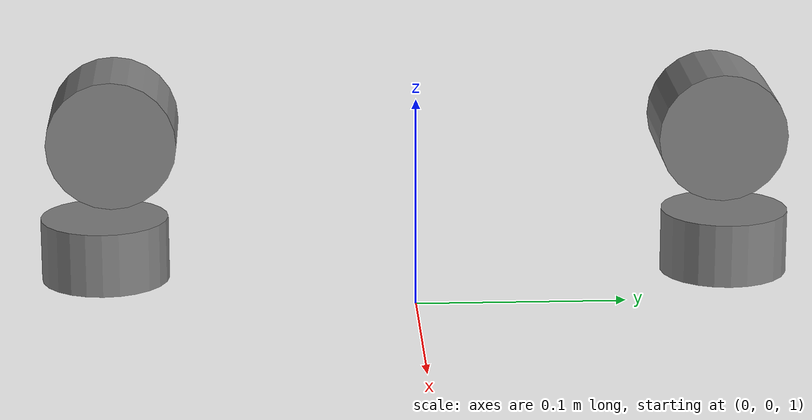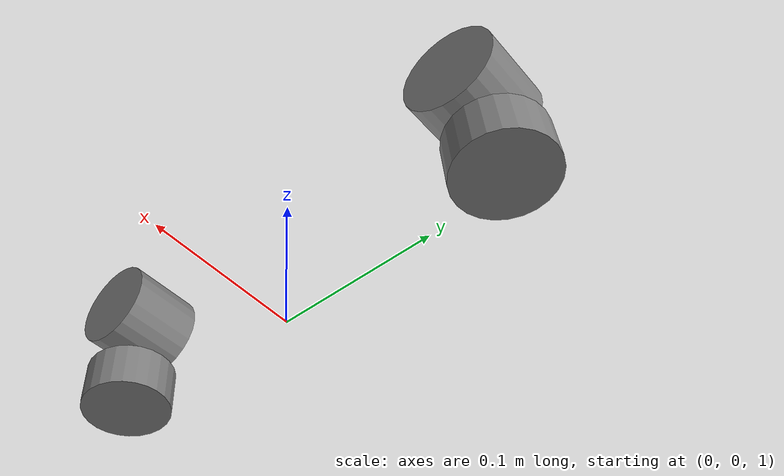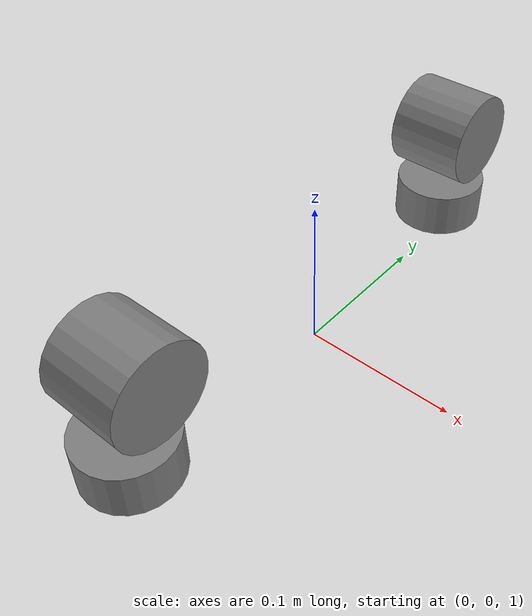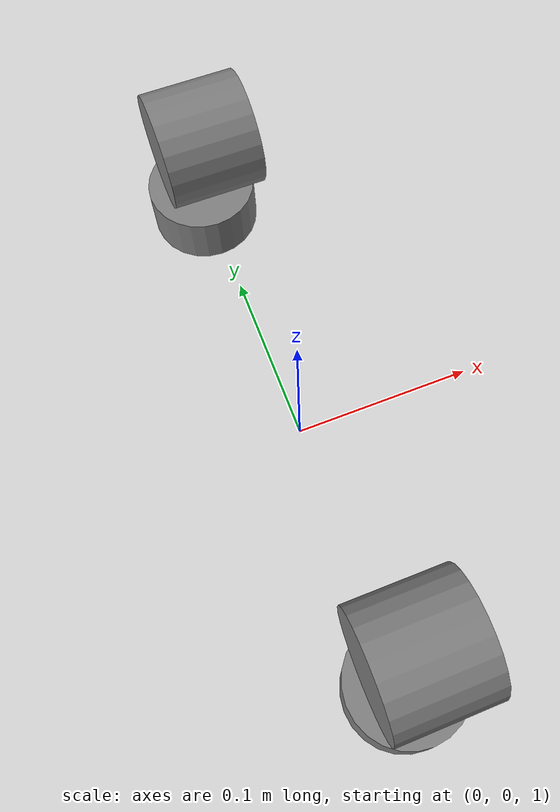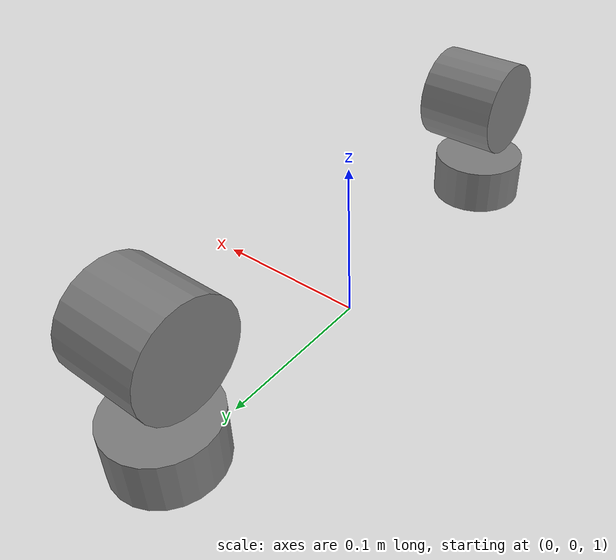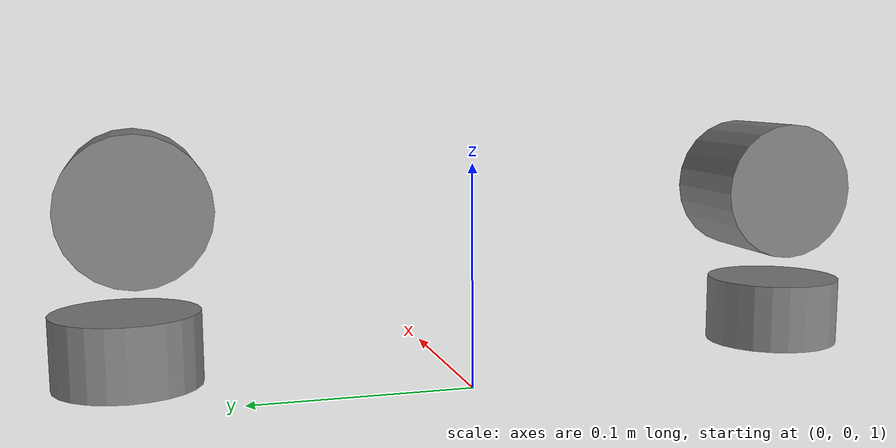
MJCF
<mujoco model="g1 scene">
  <compiler angle="radian" meshdir="." />

  <option iterations="3" ls_iterations="5" integrator="Euler" cone="pyramidal">
    <flag eulerdamp="disable" />
  </option>

  <size nkey="2" />

  <statistic meansize="0.04" extent="1.2" center="0 0 0.7" />

  <visual>
    <global azimuth="140" elevation="-20" />
    <quality shadowsize="8192" />
    <headlight ambient="0.2 0.2 0.2" diffuse="0.8 0.8 0.8" specular="1 1 1" />
    <map force="0.01" />
    <scale forcewidth="0.3" contactwidth="0.5" contactheight="0.2" />
    <rgba force="1 0 0 1" />
  </visual>

  <default>
    <default class="g1">
      <joint damping="2" frictionloss="0.1" />
      <geom contype="0" conaffinity="0" condim="1" />
      <site group="5" rgba="1 0 0 1" />
      <general biastype="affine" gainprm="75" biasprm="0 -75" />
      <default class="hip">
        <default class="hip_pitch">
          <joint range="-2.5307 2.8798" armature="0.0101775" axis="0 1 0" />
        </default>
        <default class="hip_roll">
          <joint range="-0.5236 2.9671" armature="0.0251019" axis="1 0 0" />
        </default>
        <default class="hip_yaw">
          <joint range="-2.7576 2.7576" armature="0.0101775" />
        </default>
      </default>
      <default class="knee">
        <joint range="-0.087267 2.8798" armature="0.0251019" axis="0 1 0" />
      </default>
      <default class="ankle">
        <default class="ankle_pitch">
          <joint range="-0.87267 0.5236" armature="0.00721945" damping="1" axis="0 1 0" />
          <general gainprm="20" biasprm="0 -20" />
        </default>
        <default class="ankle_roll">
          <joint range="-0.2618 0.2618" armature="0.00721945" damping="0.2" axis="1 0 0" />
          <general gainprm="2" biasprm="0 -2" />
        </default>
      </default>
      <default class="waist_yaw">
        <joint range="-2.618 2.618" armature="0.0101775" />
      </default>
      <default class="waist_pitch">
        <joint range="-0.52 0.52" armature="0.00721945" axis="0 1 0" />
      </default>
      <default class="waist_roll">
        <joint range="-0.52 0.52" armature="0.00721945" axis="1 0 0" />
      </default>
      <default class="shoulder">
        <default class="shoulder_pitch">
          <joint range="-3.0892 2.6704" armature="0.00360972" axis="0 1 0" />
        </default>
        <default class="shoulder_roll">
          <joint armature="0.00360972" axis="1 0 0" />
        </default>
        <default class="shoulder_yaw">
          <joint range="-2.618 2.618" armature="0.00360972" />
        </default>
      </default>
      <default class="elbow">
        <joint range="-1.0472 2.0944" armature="0.00360972" axis="0 1 0" />
      </default>
      <default class="wrist">
        <joint damping="0.2" />
        <general gainprm="2" biasprm="0 -2" />
        <default class="wrist_roll">
          <joint range="-1.97222 1.97222" armature="0.00360972" axis="1 0 0" />
        </default>
        <default class="wrist_pitch">
          <joint range="-1.61443 1.61443" armature="0.00425" axis="0 1 0" />
        </default>
        <default class="wrist_yaw">
          <joint range="-1.61443 1.61443" armature="0.00425" />
        </default>
      </default>
      <default class="visual">
        </default>
      <default class="collision">
        <geom group="3" rgba="0.2 0.6 0.2 0.3" />
        <default class="foot">
          <geom size="0.085 0.03 0.005" />
        </default>
      </default>
    </default>
  </default>

  <asset>
    <texture type="skybox" colorspace="auto" builtin="gradient" rgb1="1 1 1" rgb2="1 1 1" width="800" height="4800" />
    <texture type="2d" colorspace="auto" name="groundplane" builtin="checker" mark="edge" rgb1="1 1 1" rgb2="1 1 1" width="300" height="300" />
    <material name="silver" rgba="0.7 0.7 0.7 1" />
    <material name="black" rgba="0.2 0.2 0.2 1" />
    <material name="groundplane" texture="groundplane" texrepeat="5 5" texuniform="true" />
    </asset>

  <worldbody>
    <geom name="floor" size="0 0 0.01" type="plane" material="groundplane" contype="1" conaffinity="1" condim="3" friction="0.6 0.005 0.0001" />
    <light name="spotlight" target="pelvis" pos="0 -2 4" exponent="20" mode="targetbodycom" />
    <body name="pelvis" childclass="g1" pos="0 0 0.793">
      <inertial pos="0 0 -0.07605" quat="1 0 -0.000399148 0" mass="3.813" diaginertia="0.010549 0.0093089 0.0079184" />
      <joint name="floating_base_joint" type="free" damping="0" frictionloss="0" />
      <site name="imu_in_pelvis" size="0.01" pos="0.04525 0 -0.08339" />
      <camera name="track" quat="0.683353 0.555871 0.298684 0.367183" pos="1.734 -1.135 0.35" mode="trackcom" />
      <body name="left_hip_pitch_link" pos="0 0.064452 -0.1027">
        <inertial pos="0.002741 0.047791 -0.02606" quat="0.954862 0.293964 0.0302556 0.030122" mass="1.35" diaginertia="0.00181517 0.00153422 0.00116212" />
        <joint name="left_hip_pitch_joint" class="hip_pitch" />
        <body name="left_hip_roll_link" pos="0 0.052 -0.030465" quat="0.996179 0 -0.0873386 0">
          <inertial pos="0.029812 -0.001045 -0.087934" quat="0.977808 -1.97119e-05 0.205576 -0.0403793" mass="1.52" diaginertia="0.00254986 0.00241169 0.00148755" />
          <joint name="left_hip_roll_joint" class="hip_roll" />
          <geom name="left_thigh" class="collision" size="0.06 0.1" pos="0.02 0 -0.1" type="capsule" />
          <body name="left_hip_yaw_link" pos="0.025001 0 -0.12412">
            <inertial pos="-0.057709 -0.010981 -0.15078" quat="0.600598 0.15832 0.223482 0.751181" mass="1.702" diaginertia="0.00776166 0.00717575 0.00160139" />
            <joint name="left_hip_yaw_joint" class="hip_yaw" />
            <body name="left_knee_link" pos="-0.078273 0.0021489 -0.17734" quat="0.996179 0 0.0873386 0">
              <inertial pos="0.005457 0.003964 -0.12074" quat="0.923418 -0.0327699 0.0158246 0.382067" mass="1.932" diaginertia="0.0113804 0.0112778 0.00146458" />
              <joint name="left_knee_joint" class="knee" />
              <geom name="left_shin" class="collision" size="0.08 0.125" pos="0.02 0 -0.125" type="capsule" />
              <body name="left_ankle_pitch_link" pos="0 -9.4445e-05 -0.30001">
                <inertial pos="-0.007269 0 0.011137" quat="0.603053 0.369225 0.369225 0.603053" mass="0.074" diaginertia="1.89e-05 1.40805e-05 6.9195e-06" />
                <joint name="left_ankle_pitch_joint" class="ankle_pitch" />
                <body name="left_ankle_roll_link" pos="0 0 -0.017558">
                  <inertial pos="0.026505 0 -0.016425" quat="-0.000481092 0.728482 -0.000618967 0.685065" mass="0.608" diaginertia="0.00167218 0.0016161 0.000217621" />
                  <joint name="left_ankle_roll_joint" class="ankle_roll" />
                  <geom name="left_foot" class="foot" size="0.09 0.03 0.008" pos="0.04 0 -0.029" type="box" contype="1" conaffinity="1" condim="3" friction="0.6 0.005 0.0001" />
                  <site name="left_foot" />
                </body>
              </body>
            </body>
          </body>
        </body>
      </body>
      <body name="right_hip_pitch_link" pos="0 -0.064452 -0.1027">
        <inertial pos="0.002741 -0.047791 -0.02606" quat="0.954862 -0.293964 0.0302556 -0.030122" mass="1.35" diaginertia="0.00181517 0.00153422 0.00116212" />
        <joint name="right_hip_pitch_joint" class="hip_pitch" />
        <body name="right_hip_roll_link" pos="0 -0.052 -0.030465" quat="0.996179 0 -0.0873386 0">
          <inertial pos="0.029812 0.001045 -0.087934" quat="0.977808 1.97119e-05 0.205576 0.0403793" mass="1.52" diaginertia="0.00254986 0.00241169 0.00148755" />
          <joint name="right_hip_roll_joint" class="hip_roll" />
          <geom name="right_thigh" class="collision" size="0.06 0.1" pos="0.02 0 -0.1" type="capsule" />
          <body name="right_hip_yaw_link" pos="0.025001 0 -0.12412">
            <inertial pos="-0.057709 0.010981 -0.15078" quat="0.751181 0.223482 0.15832 0.600598" mass="1.702" diaginertia="0.00776166 0.00717575 0.00160139" />
            <joint name="right_hip_yaw_joint" class="hip_yaw" />
            <body name="right_knee_link" pos="-0.078273 -0.0021489 -0.17734" quat="0.996179 0 0.0873386 0">
              <inertial pos="0.005457 -0.003964 -0.12074" quat="0.923439 0.0345276 0.0116333 -0.382012" mass="1.932" diaginertia="0.011374 0.0112843 0.00146452" />
              <joint name="right_knee_joint" class="knee" />
              <geom name="right_shin" class="collision" size="0.08 0.125" pos="0.02 0 -0.125" type="capsule" />
              <body name="right_ankle_pitch_link" pos="0 9.4445e-05 -0.30001">
                <inertial pos="-0.007269 0 0.011137" quat="0.603053 0.369225 0.369225 0.603053" mass="0.074" diaginertia="1.89e-05 1.40805e-05 6.9195e-06" />
                <joint name="right_ankle_pitch_joint" class="ankle_pitch" />
                <body name="right_ankle_roll_link" pos="0 0 -0.017558">
                  <inertial pos="0.026505 0 -0.016425" quat="0.000481092 0.728482 0.000618967 0.685065" mass="0.608" diaginertia="0.00167218 0.0016161 0.000217621" />
                  <joint name="right_ankle_roll_joint" class="ankle_roll" />
                  <geom name="right_foot" class="foot" size="0.09 0.03 0.008" pos="0.04 0 -0.029" type="box" contype="1" conaffinity="1" condim="3" friction="0.6 0.005 0.0001" />
                  <site name="right_foot" />
                </body>
              </body>
            </body>
          </body>
        </body>
      </body>
      <body name="waist_yaw_link">
        <inertial pos="0.003494 0.000233 0.018034" quat="0.289697 0.591001 -0.337795 0.672821" mass="0.214" diaginertia="0.000163531 0.000107714 0.000102205" />
        <joint name="waist_yaw_joint" class="waist_yaw" />
        <body name="waist_roll_link" pos="-0.0039635 0 0.044">
          <inertial pos="0 2.3e-05 0" quat="0.5 0.5 -0.5 0.5" mass="0.086" diaginertia="8.245e-06 7.079e-06 6.339e-06" />
          <joint name="waist_roll_joint" class="waist_roll" />
          <body name="torso_link">
            <inertial pos="0.00203158 0.000339683 0.184568" quat="0.999803 -6.03319e-05 0.0198256 0.00131986" mass="7.818" diaginertia="0.121847 0.109825 0.0273735" />
            <joint name="waist_pitch_joint" class="waist_pitch" />
            <site name="imu_in_torso" size="0.01" pos="-0.03959 -0.00224 0.14792" />
            <body name="left_shoulder_pitch_link" pos="0.0039563 0.10022 0.24778" quat="0.990264 0.139201 1.38722e-05 -9.86868e-05">
              <inertial pos="0 0.035892 -0.011628" quat="0.654152 0.0130458 -0.326267 0.68225" mass="0.718" diaginertia="0.000465864 0.000432842 0.000406394" />
              <joint name="left_shoulder_pitch_joint" class="shoulder_pitch" />
              <geom class="visual" size="0.03 0.025" pos="0 0.04 -0.01" quat="0.707107 0 0.707107 0" type="cylinder" />
              <body name="left_shoulder_roll_link" pos="0 0.038 -0.013831" quat="0.990268 -0.139172 0 0">
                <inertial pos="-0.000227 0.00727 -0.063243" quat="0.701256 -0.0196223 -0.00710317 0.712604" mass="0.643" diaginertia="0.000691311 0.000618011 0.000388977" />
                <joint name="left_shoulder_roll_joint" class="shoulder_roll" range="-1.5882 2.2515" />
                <geom class="visual" size="0.03 0.015" pos="-0.004 0.006 -0.053" type="cylinder" />
                <body name="left_shoulder_yaw_link" pos="0 0.00624 -0.1032">
                  <inertial pos="0.010773 -0.002949 -0.072009" quat="0.716879 -0.0964829 -0.0679942 0.687134" mass="0.734" diaginertia="0.00106187 0.00103217 0.000400661" />
                  <joint name="left_shoulder_yaw_joint" class="shoulder_yaw" />
                  <body name="left_elbow_link" pos="0.015783 0 -0.080518">
                    <inertial pos="0.064956 0.004454 -0.010062" quat="0.541765 0.636132 0.388821 0.388129" mass="0.6" diaginertia="0.000443035 0.000421612 0.000259353" />
                    <joint name="left_elbow_joint" class="elbow" />
                    <body name="left_wrist_roll_link" pos="0.1 0.00188791 -0.01">
                      <inertial pos="0.0171394 0.000537591 4.8864e-07" quat="0.575338 0.411667 -0.574906 0.411094" mass="0.085445" diaginertia="5.48211e-05 4.96646e-05 3.57798e-05" />
                      <joint name="left_wrist_roll_joint" class="wrist_roll" />
                      <body name="left_wrist_pitch_link" pos="0.038 0 0">
                        <inertial pos="0.0229999 -0.00111685 -0.00111658" quat="0.249998 0.661363 0.293036 0.643608" mass="0.48405" diaginertia="0.000430353 0.000429873 0.000164648" />
                        <joint name="left_wrist_pitch_joint" class="wrist_pitch" />
                        <body name="left_wrist_yaw_link" pos="0.046 0 0">
                          <inertial pos="0.0708244 0.000191745 0.00161742" quat="0.510571 0.526295 0.468078 0.493188" mass="0.254576" diaginertia="0.000646113 0.000559993 0.000147566" />
                          <joint name="left_wrist_yaw_joint" class="wrist_yaw" />
                          <geom name="left_hand_collision" class="collision" size="0.05 0.025" pos="0.075 0 0" quat="0.707107 0 -0.707107 0" type="capsule" rgba="0.2 0.6 0.2 0.2" />
                          <site name="left_palm" size="0.01" pos="0.08 0 0" />
                        </body>
                      </body>
                    </body>
                  </body>
                </body>
              </body>
            </body>
            <body name="right_shoulder_pitch_link" pos="0.0039563 -0.10021 0.24778" quat="0.990264 -0.139201 1.38722e-05 9.86868e-05">
              <inertial pos="0 -0.035892 -0.011628" quat="0.68225 -0.326267 0.0130458 0.654152" mass="0.718" diaginertia="0.000465864 0.000432842 0.000406394" />
              <joint name="right_shoulder_pitch_joint" class="shoulder_pitch" />
              <geom class="visual" size="0.03 0.025" pos="0 -0.04 -0.01" quat="0.707107 0 0.707107 0" type="cylinder" />
              <body name="right_shoulder_roll_link" pos="0 -0.038 -0.013831" quat="0.990268 0.139172 0 0">
                <inertial pos="-0.000227 -0.00727 -0.063243" quat="0.712604 -0.00710317 -0.0196223 0.701256" mass="0.643" diaginertia="0.000691311 0.000618011 0.000388977" />
                <joint name="right_shoulder_roll_joint" class="shoulder_roll" range="-2.2515 1.5882" />
                <geom class="visual" size="0.03 0.015" pos="-0.004 -0.006 -0.053" type="cylinder" />
                <body name="right_shoulder_yaw_link" pos="0 -0.00624 -0.1032">
                  <inertial pos="0.010773 0.002949 -0.072009" quat="0.687134 -0.0679942 -0.0964829 0.716879" mass="0.734" diaginertia="0.00106187 0.00103217 0.000400661" />
                  <joint name="right_shoulder_yaw_joint" class="shoulder_yaw" />
                  <body name="right_elbow_link" pos="0.015783 0 -0.080518">
                    <inertial pos="0.064956 -0.004454 -0.010062" quat="0.388129 0.388821 0.636132 0.541765" mass="0.6" diaginertia="0.000443035 0.000421612 0.000259353" />
                    <joint name="right_elbow_joint" class="elbow" />
                    <body name="right_wrist_roll_link" pos="0.1 -0.00188791 -0.01">
                      <inertial pos="0.0171394 -0.000537591 4.8864e-07" quat="0.411667 0.575338 -0.411094 0.574906" mass="0.085445" diaginertia="5.48211e-05 4.96646e-05 3.57798e-05" />
                      <joint name="right_wrist_roll_joint" class="wrist_roll" />
                      <body name="right_wrist_pitch_link" pos="0.038 0 0">
                        <inertial pos="0.0229999 0.00111685 -0.00111658" quat="0.643608 0.293036 0.661363 0.249998" mass="0.48405" diaginertia="0.000430353 0.000429873 0.000164648" />
                        <joint name="right_wrist_pitch_joint" class="wrist_pitch" />
                        <body name="right_wrist_yaw_link" pos="0.046 0 0">
                          <inertial pos="0.0708244 -0.000191745 0.00161742" quat="0.493188 0.468078 0.526295 0.510571" mass="0.254576" diaginertia="0.000646113 0.000559993 0.000147566" />
                          <joint name="right_wrist_yaw_joint" class="wrist_yaw" />
                          <geom name="right_hand_collision" class="collision" size="0.05 0.025" pos="0.075 0 0" quat="0.707107 0 -0.707107 0" type="capsule" rgba="0.2 0.6 0.2 0.2" />
                          <site name="right_palm" size="0.01" pos="0.08 0 0" />
                        </body>
                      </body>
                    </body>
                  </body>
                </body>
              </body>
            </body>
          </body>
        </body>
      </body>
    </body>
  </worldbody>

  <actuator>
    <general name="left_hip_pitch_joint" class="hip_pitch" joint="left_hip_pitch_joint" ctrlrange="-2.5307 2.8798" forcerange="-88 88" forcelimited="true" />
    <general name="left_hip_roll_joint" class="hip_roll" joint="left_hip_roll_joint" ctrlrange="-0.5236 2.9671" forcerange="-139 139" forcelimited="true" />
    <general name="left_hip_yaw_joint" class="hip_yaw" joint="left_hip_yaw_joint" ctrlrange="-2.7576 2.7576" forcerange="-88 88" forcelimited="true" />
    <general name="left_knee_joint" class="knee" joint="left_knee_joint" ctrlrange="-0.087267 2.8798" forcerange="-139 139" forcelimited="true" />
    <general name="left_ankle_pitch_joint" class="ankle_pitch" joint="left_ankle_pitch_joint" ctrlrange="-0.87267 0.5236" forcerange="-50 50" forcelimited="true" />
    <general name="left_ankle_roll_joint" class="ankle_roll" joint="left_ankle_roll_joint" ctrlrange="-0.2618 0.2618" forcerange="-50 50" forcelimited="true" />
    <general name="right_hip_pitch_joint" class="hip_pitch" joint="right_hip_pitch_joint" ctrlrange="-2.5307 2.8798" forcerange="-88 88" forcelimited="true" />
    <general name="right_hip_roll_joint" class="hip_roll" joint="right_hip_roll_joint" ctrlrange="-0.5236 2.9671" forcerange="-139 139" forcelimited="true" />
    <general name="right_hip_yaw_joint" class="hip_yaw" joint="right_hip_yaw_joint" ctrlrange="-2.7576 2.7576" forcerange="-88 88" forcelimited="true" />
    <general name="right_knee_joint" class="knee" joint="right_knee_joint" ctrlrange="-0.087267 2.8798" forcerange="-139 139" forcelimited="true" />
    <general name="right_ankle_pitch_joint" class="ankle_pitch" joint="right_ankle_pitch_joint" ctrlrange="-0.87267 0.5236" forcerange="-50 50" forcelimited="true" />
    <general name="right_ankle_roll_joint" class="ankle_roll" joint="right_ankle_roll_joint" ctrlrange="-0.2618 0.2618" forcerange="-50 50" forcelimited="true" />
    <general name="waist_yaw_joint" class="waist_yaw" joint="waist_yaw_joint" ctrlrange="-2.618 2.618" forcerange="-88 88" forcelimited="true" />
    <general name="waist_roll_joint" class="waist_roll" joint="waist_roll_joint" ctrlrange="-0.52 0.52" forcerange="-50 50" forcelimited="true" />
    <general name="waist_pitch_joint" class="waist_pitch" joint="waist_pitch_joint" ctrlrange="-0.52 0.52" forcerange="-50 50" forcelimited="true" />
    <general name="left_shoulder_pitch_joint" class="shoulder_pitch" joint="left_shoulder_pitch_joint" ctrlrange="-3.0892 2.6704" forcerange="-25 25" forcelimited="true" />
    <general name="left_shoulder_roll_joint" class="shoulder_roll" joint="left_shoulder_roll_joint" ctrlrange="-1.5882 2.2515" forcerange="-25 25" forcelimited="true" />
    <general name="left_shoulder_yaw_joint" class="shoulder_yaw" joint="left_shoulder_yaw_joint" ctrlrange="-2.618 2.618" forcerange="-25 25" forcelimited="true" />
    <general name="left_elbow_joint" class="elbow" joint="left_elbow_joint" ctrlrange="-1.0472 2.0944" forcerange="-25 25" forcelimited="true" />
    <general name="left_wrist_roll_joint" class="wrist_roll" joint="left_wrist_roll_joint" ctrlrange="-1.97222 1.97222" forcerange="-25 25" forcelimited="true" />
    <general name="left_wrist_pitch_joint" class="wrist_pitch" joint="left_wrist_pitch_joint" ctrlrange="-1.61443 1.61443" forcerange="-5 5" forcelimited="true" />
    <general name="left_wrist_yaw_joint" class="wrist_yaw" joint="left_wrist_yaw_joint" ctrlrange="-1.61443 1.61443" forcerange="-5 5" forcelimited="true" />
    <general name="right_shoulder_pitch_joint" class="shoulder_pitch" joint="right_shoulder_pitch_joint" ctrlrange="-3.0892 2.6704" forcerange="-25 25" forcelimited="true" />
    <general name="right_shoulder_roll_joint" class="shoulder_roll" joint="right_shoulder_roll_joint" ctrlrange="-2.2515 1.5882" forcerange="-25 25" forcelimited="true" />
    <general name="right_shoulder_yaw_joint" class="shoulder_yaw" joint="right_shoulder_yaw_joint" ctrlrange="-2.618 2.618" forcerange="-25 25" forcelimited="true" />
    <general name="right_elbow_joint" class="elbow" joint="right_elbow_joint" ctrlrange="-1.0472 2.0944" forcerange="-25 25" forcelimited="true" />
    <general name="right_wrist_roll_joint" class="wrist_roll" joint="right_wrist_roll_joint" ctrlrange="-1.97222 1.97222" forcerange="-25 25" forcelimited="true" />
    <general name="right_wrist_pitch_joint" class="wrist_pitch" joint="right_wrist_pitch_joint" ctrlrange="-1.61443 1.61443" forcerange="-5 5" forcelimited="true" />
    <general name="right_wrist_yaw_joint" class="wrist_yaw" joint="right_wrist_yaw_joint" ctrlrange="-1.61443 1.61443" forcerange="-5 5" forcelimited="true" />
  </actuator>

  <sensor>
    <framezaxis objtype="site" objname="imu_in_torso" name="upvector_torso" />
    <velocimeter site="imu_in_torso" name="local_linvel_torso" />
    <velocimeter site="imu_in_pelvis" name="local_linvel_pelvis" />
    <accelerometer site="imu_in_torso" name="accelerometer_torso" />
    <accelerometer site="imu_in_pelvis" name="accelerometer_pelvis" />
    <gyro site="imu_in_torso" name="gyro_torso" />
    <gyro site="imu_in_pelvis" name="gyro_pelvis" />
    <framezaxis objtype="site" objname="imu_in_pelvis" name="upvector_pelvis" />
    <framexaxis objtype="site" objname="imu_in_torso" name="forwardvector_torso" />
    <framexaxis objtype="site" objname="imu_in_pelvis" name="forwardvector_pelvis" />
    <framequat objtype="site" objname="imu_in_torso" name="orientation_torso" />
    <framequat objtype="site" objname="imu_in_pelvis" name="orientation_pelvis" />
    <framelinvel objtype="site" objname="imu_in_torso" name="global_linvel_torso" />
    <framelinvel objtype="site" objname="imu_in_pelvis" name="global_linvel_pelvis" />
    <frameangvel objtype="site" objname="imu_in_torso" name="global_angvel_torso" />
    <frameangvel objtype="site" objname="imu_in_pelvis" name="global_angvel_pelvis" />
    <framelinvel objtype="site" objname="left_foot" name="left_foot_global_linvel" />
    <framelinvel objtype="site" objname="right_foot" name="right_foot_global_linvel" />
    <framezaxis objtype="site" objname="left_foot" name="left_foot_upvector" />
    <framezaxis objtype="site" objname="right_foot" name="right_foot_upvector" />
    <force site="left_foot" name="left_foot_force" />
    <force site="right_foot" name="right_foot_force" />
    <contact geom1="left_foot" geom2="floor" reduce="mindist" name="left_foot_floor_found" />
    <contact geom1="right_foot" geom2="floor" reduce="mindist" name="right_foot_floor_found" />
    <contact geom1="right_foot" geom2="left_foot" reduce="mindist" name="right_foot_left_foot_found" />
    <contact geom1="left_foot" geom2="right_shin" reduce="mindist" name="left_foot_right_shin_found" />
    <contact geom1="right_foot" geom2="left_shin" reduce="mindist" name="right_foot_left_shin_found" />
    <contact geom1="left_hand_collision" geom2="left_thigh" reduce="mindist" name="left_hand_left_thigh_found" />
    <contact geom1="right_hand_collision" geom2="right_thigh" reduce="mindist" name="right_hand_right_thigh_found" />
  </sensor>

  <keyframe>
    <key name="home" qpos="0 0 0.785 1 0 0 0 -0.1 0 0 0.3 -0.2 0 -0.1 0 0 0.3 -0.2 0 0 0 0 0.2 0.2 0 1.28 0 0 0 0.2 -0.2 0 1.28 0 0 0" ctrl="-0.1 0 0 0.3 -0.2 0 -0.1 0 0 0.3 -0.2 0 0 0 0 0.2 0.2 0 1.28 0 0 0 0.2 -0.2 0 1.28 0 0 0" />
    <key name="knees_bent" qpos="0 0 0.755 1 0 0 0 -0.312 0 0 0.669 -0.363 0 -0.312 0 0 0.669 -0.363 0 0 0 0.073 0.2 0.2 0 0.6 0 0 0 0.2 -0.2 0 0.6 0 0 0" ctrl="-0.312 0 0 0.669 -0.363 0 -0.312 0 0 0.669 -0.363 0 0 0 0.073 0.2 0.2 0 0.6 0 0 0 0.2 -0.2 0 0.6 0 0 0" />
  </keyframe>
</mujoco>
